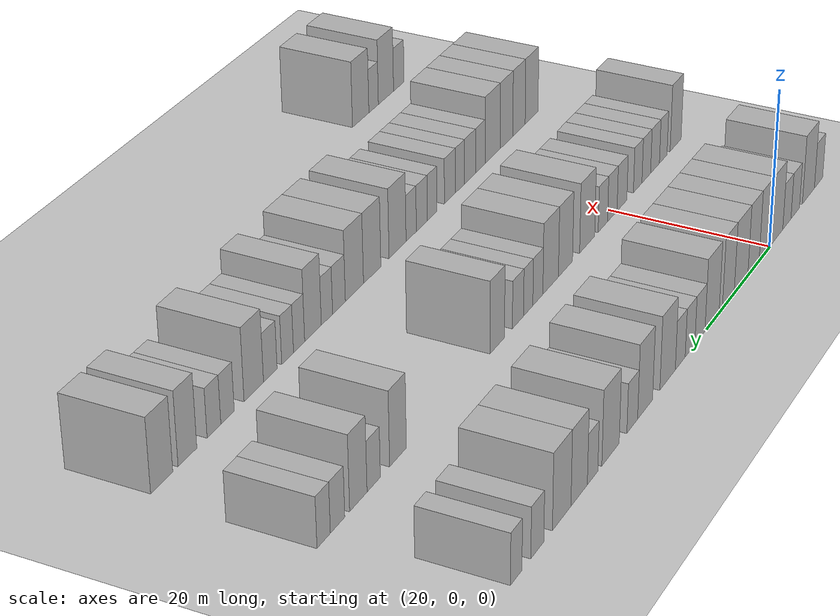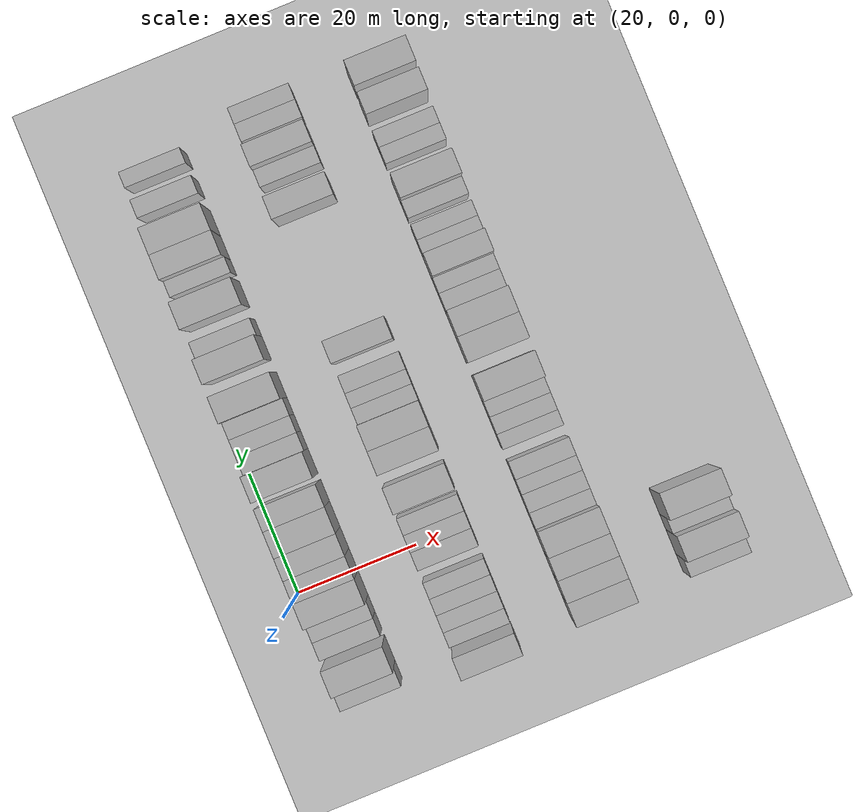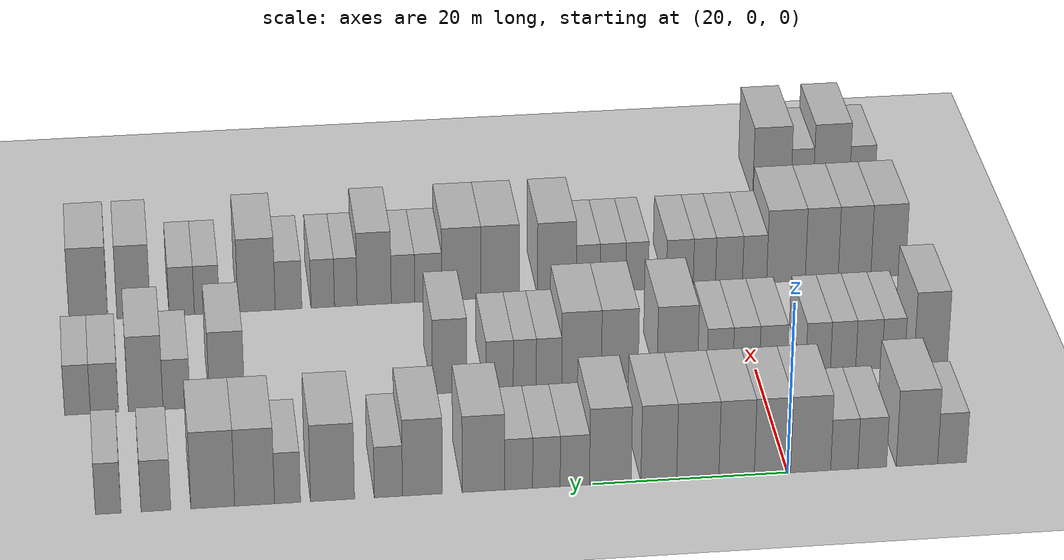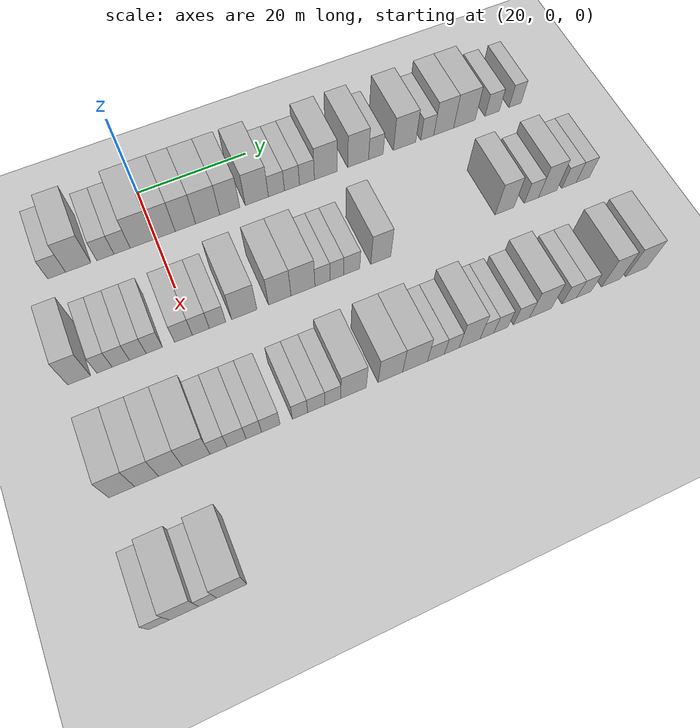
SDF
<sdf version="1.6">
 <world name="default">
  <include><name>ground_plane_1</name><uri>model://HANNAS_ground_plane</uri></include>
  <model name="building_87">
   <static>1</static>
   <pose>25.0000 -16.9149 0 0.000000 0.000000 0.000000</pose>
   <link name="link">
    <pose>0 0 3.00 0 0 0</pose>
    <collision name="collision"><geometry><box><size>10.0000 2.9946 6.0000</size></box></geometry></collision>
    <visual name="visual">
     <cast_shadows>0</cast_shadows>
     <geometry><box><size>10.0000 2.9946 6.0000</size></box></geometry>
     <material>
      <script>
       <uri>model://HANNAS_wall/materials/scripts</uri>
       <uri>model://HANNAS_wall/materials/textures</uri>
       <name>vrc/HANNAS_wall</name>
      </script>
     </material>
    </visual>
   </link>
  </model>
  <model name="building_88">
   <static>1</static>
   <pose>25.0000 -13.2777 0 0.000000 0.000000 0.000000</pose>
   <link name="link">
    <pose>0 0 4.50 0 0 0</pose>
    <collision name="collision"><geometry><box><size>10.0000 4.2799 9.0000</size></box></geometry></collision>
    <visual name="visual">
     <cast_shadows>0</cast_shadows>
     <geometry><box><size>10.0000 4.2799 9.0000</size></box></geometry>
     <material>
      <script>
       <uri>model://HANNAS_wall/materials/scripts</uri>
       <uri>model://HANNAS_wall/materials/textures</uri>
       <name>vrc/HANNAS_wall</name>
      </script>
     </material>
    </visual>
   </link>
  </model>
  <model name="building_89">
   <static>1</static>
   <pose>25.0000 -8.6603 0 0.000000 0.000000 0.000000</pose>
   <link name="link">
    <pose>0 0 3.00 0 0 0</pose>
    <collision name="collision"><geometry><box><size>10.0000 2.9550 6.0000</size></box></geometry></collision>
    <visual name="visual">
     <cast_shadows>0</cast_shadows>
     <geometry><box><size>10.0000 2.9550 6.0000</size></box></geometry>
     <material>
      <script>
       <uri>model://HANNAS_wall/materials/scripts</uri>
       <uri>model://HANNAS_wall/materials/textures</uri>
       <name>vrc/HANNAS_wall</name>
      </script>
     </material>
    </visual>
   </link>
  </model>
  <model name="building_90">
   <static>1</static>
   <pose>25.0000 -5.7794 0 0.000000 0.000000 0.000000</pose>
   <link name="link">
    <pose>0 0 3.00 0 0 0</pose>
    <collision name="collision"><geometry><box><size>10.0000 2.8067 6.0000</size></box></geometry></collision>
    <visual name="visual">
     <cast_shadows>0</cast_shadows>
     <geometry><box><size>10.0000 2.8067 6.0000</size></box></geometry>
     <material>
      <script>
       <uri>model://HANNAS_wall/materials/scripts</uri>
       <uri>model://HANNAS_wall/materials/textures</uri>
       <name>vrc/HANNAS_wall</name>
      </script>
     </material>
    </visual>
   </link>
  </model>
  <model name="building_91">
   <static>1</static>
   <pose>25.0000 -2.3033 0 0.000000 0.000000 0.000000</pose>
   <link name="link">
    <pose>0 0 4.50 0 0 0</pose>
    <collision name="collision"><geometry><box><size>10.0000 4.1456 9.0000</size></box></geometry></collision>
    <visual name="visual">
     <cast_shadows>0</cast_shadows>
     <geometry><box><size>10.0000 4.1456 9.0000</size></box></geometry>
     <material>
      <script>
       <uri>model://HANNAS_wall/materials/scripts</uri>
       <uri>model://HANNAS_wall/materials/textures</uri>
       <name>vrc/HANNAS_wall</name>
      </script>
     </material>
    </visual>
   </link>
  </model>
  <model name="building_92">
   <static>1</static>
   <pose>25.0000 1.6266 0 0.000000 0.000000 0.000000</pose>
   <link name="link">
    <pose>0 0 4.50 0 0 0</pose>
    <collision name="collision"><geometry><box><size>10.0000 3.7142 9.0000</size></box></geometry></collision>
    <visual name="visual">
     <cast_shadows>0</cast_shadows>
     <geometry><box><size>10.0000 3.7142 9.0000</size></box></geometry>
     <material>
      <script>
       <uri>model://HANNAS_wall/materials/scripts</uri>
       <uri>model://HANNAS_wall/materials/textures</uri>
       <name>vrc/HANNAS_wall</name>
      </script>
     </material>
    </visual>
   </link>
  </model>
  <model name="building_93">
   <static>1</static>
   <pose>25.0000 5.3016 0 0.000000 0.000000 0.000000</pose>
   <link name="link">
    <pose>0 0 4.50 0 0 0</pose>
    <collision name="collision"><geometry><box><size>10.0000 3.6359 9.0000</size></box></geometry></collision>
    <visual name="visual">
     <cast_shadows>0</cast_shadows>
     <geometry><box><size>10.0000 3.6359 9.0000</size></box></geometry>
     <material>
      <script>
       <uri>model://HANNAS_wall/materials/scripts</uri>
       <uri>model://HANNAS_wall/materials/textures</uri>
       <name>vrc/HANNAS_wall</name>
      </script>
     </material>
    </visual>
   </link>
  </model>
  <model name="building_94">
   <static>1</static>
   <pose>25.0000 9.2811 0 0.000000 0.000000 0.000000</pose>
   <link name="link">
    <pose>0 0 4.50 0 0 0</pose>
    <collision name="collision"><geometry><box><size>10.0000 4.3231 9.0000</size></box></geometry></collision>
    <visual name="visual">
     <cast_shadows>0</cast_shadows>
     <geometry><box><size>10.0000 4.3231 9.0000</size></box></geometry>
     <material>
      <script>
       <uri>model://HANNAS_wall/materials/scripts</uri>
       <uri>model://HANNAS_wall/materials/textures</uri>
       <name>vrc/HANNAS_wall</name>
      </script>
     </material>
    </visual>
   </link>
  </model>
  <model name="building_95">
   <static>1</static>
   <pose>25.0000 13.2695 0 0.000000 0.000000 0.000000</pose>
   <link name="link">
    <pose>0 0 4.50 0 0 0</pose>
    <collision name="collision"><geometry><box><size>10.0000 3.6537 9.0000</size></box></geometry></collision>
    <visual name="visual">
     <cast_shadows>0</cast_shadows>
     <geometry><box><size>10.0000 3.6537 9.0000</size></box></geometry>
     <material>
      <script>
       <uri>model://HANNAS_wall/materials/scripts</uri>
       <uri>model://HANNAS_wall/materials/textures</uri>
       <name>vrc/HANNAS_wall</name>
      </script>
     </material>
    </visual>
   </link>
  </model>
  <model name="building_96">
   <static>1</static>
   <pose>25.0000 18.2211 0 0.000000 0.000000 0.000000</pose>
   <link name="link">
    <pose>0 0 4.50 0 0 0</pose>
    <collision name="collision"><geometry><box><size>10.0000 4.2493 9.0000</size></box></geometry></collision>
    <visual name="visual">
     <cast_shadows>0</cast_shadows>
     <geometry><box><size>10.0000 4.2493 9.0000</size></box></geometry>
     <material>
      <script>
       <uri>model://HANNAS_wall/materials/scripts</uri>
       <uri>model://HANNAS_wall/materials/textures</uri>
       <name>vrc/HANNAS_wall</name>
      </script>
     </material>
    </visual>
   </link>
  </model>
  <model name="building_97">
   <static>1</static>
   <pose>25.0000 21.8358 0 0.000000 0.000000 0.000000</pose>
   <link name="link">
    <pose>0 0 3.00 0 0 0</pose>
    <collision name="collision"><geometry><box><size>10.0000 2.9803 6.0000</size></box></geometry></collision>
    <visual name="visual">
     <cast_shadows>0</cast_shadows>
     <geometry><box><size>10.0000 2.9803 6.0000</size></box></geometry>
     <material>
      <script>
       <uri>model://HANNAS_wall/materials/scripts</uri>
       <uri>model://HANNAS_wall/materials/textures</uri>
       <name>vrc/HANNAS_wall</name>
      </script>
     </material>
    </visual>
   </link>
  </model>
  <model name="building_98">
   <static>1</static>
   <pose>25.0000 24.7289 0 0.000000 0.000000 0.000000</pose>
   <link name="link">
    <pose>0 0 3.00 0 0 0</pose>
    <collision name="collision"><geometry><box><size>10.0000 2.8059 6.0000</size></box></geometry></collision>
    <visual name="visual">
     <cast_shadows>0</cast_shadows>
     <geometry><box><size>10.0000 2.8059 6.0000</size></box></geometry>
     <material>
      <script>
       <uri>model://HANNAS_wall/materials/scripts</uri>
       <uri>model://HANNAS_wall/materials/textures</uri>
       <name>vrc/HANNAS_wall</name>
      </script>
     </material>
    </visual>
   </link>
  </model>
  <model name="building_99">
   <static>1</static>
   <pose>25.0000 27.5397 0 0.000000 0.000000 0.000000</pose>
   <link name="link">
    <pose>0 0 3.00 0 0 0</pose>
    <collision name="collision"><geometry><box><size>10.0000 2.8157 6.0000</size></box></geometry></collision>
    <visual name="visual">
     <cast_shadows>0</cast_shadows>
     <geometry><box><size>10.0000 2.8157 6.0000</size></box></geometry>
     <material>
      <script>
       <uri>model://HANNAS_wall/materials/scripts</uri>
       <uri>model://HANNAS_wall/materials/textures</uri>
       <name>vrc/HANNAS_wall</name>
      </script>
     </material>
    </visual>
   </link>
  </model>
  <model name="building_100">
   <static>1</static>
   <pose>25.0000 31.1064 0 0.000000 0.000000 0.000000</pose>
   <link name="link">
    <pose>0 0 4.50 0 0 0</pose>
    <collision name="collision"><geometry><box><size>10.0000 4.3178 9.0000</size></box></geometry></collision>
    <visual name="visual">
     <cast_shadows>0</cast_shadows>
     <geometry><box><size>10.0000 4.3178 9.0000</size></box></geometry>
     <material>
      <script>
       <uri>model://HANNAS_wall/materials/scripts</uri>
       <uri>model://HANNAS_wall/materials/textures</uri>
       <name>vrc/HANNAS_wall</name>
      </script>
     </material>
    </visual>
   </link>
  </model>
  <model name="building_101">
   <static>1</static>
   <pose>25.0000 37.2836 0 0.000000 0.000000 0.000000</pose>
   <link name="link">
    <pose>0 0 4.50 0 0 0</pose>
    <collision name="collision"><geometry><box><size>10.0000 4.0366 9.0000</size></box></geometry></collision>
    <visual name="visual">
     <cast_shadows>0</cast_shadows>
     <geometry><box><size>10.0000 4.0366 9.0000</size></box></geometry>
     <material>
      <script>
       <uri>model://HANNAS_wall/materials/scripts</uri>
       <uri>model://HANNAS_wall/materials/textures</uri>
       <name>vrc/HANNAS_wall</name>
      </script>
     </material>
    </visual>
   </link>
  </model>
  <model name="building_102">
   <static>1</static>
   <pose>25.0000 40.7236 0 0.000000 0.000000 0.000000</pose>
   <link name="link">
    <pose>0 0 3.00 0 0 0</pose>
    <collision name="collision"><geometry><box><size>10.0000 2.8433 6.0000</size></box></geometry></collision>
    <visual name="visual">
     <cast_shadows>0</cast_shadows>
     <geometry><box><size>10.0000 2.8433 6.0000</size></box></geometry>
     <material>
      <script>
       <uri>model://HANNAS_wall/materials/scripts</uri>
       <uri>model://HANNAS_wall/materials/textures</uri>
       <name>vrc/HANNAS_wall</name>
      </script>
     </material>
    </visual>
   </link>
  </model>
  <model name="building_103">
   <static>1</static>
   <pose>25.0000 46.3626 0 0.000000 0.000000 0.000000</pose>
   <link name="link">
    <pose>0 0 4.50 0 0 0</pose>
    <collision name="collision"><geometry><box><size>10.0000 4.4347 9.0000</size></box></geometry></collision>
    <visual name="visual">
     <cast_shadows>0</cast_shadows>
     <geometry><box><size>10.0000 4.4347 9.0000</size></box></geometry>
     <material>
      <script>
       <uri>model://HANNAS_wall/materials/scripts</uri>
       <uri>model://HANNAS_wall/materials/textures</uri>
       <name>vrc/HANNAS_wall</name>
      </script>
     </material>
    </visual>
   </link>
  </model>
  <model name="building_104">
   <static>1</static>
   <pose>25.0000 50.8864 0 0.000000 0.000000 0.000000</pose>
   <link name="link">
    <pose>0 0 3.00 0 0 0</pose>
    <collision name="collision"><geometry><box><size>10.0000 2.6129 6.0000</size></box></geometry></collision>
    <visual name="visual">
     <cast_shadows>0</cast_shadows>
     <geometry><box><size>10.0000 2.6129 6.0000</size></box></geometry>
     <material>
      <script>
       <uri>model://HANNAS_wall/materials/scripts</uri>
       <uri>model://HANNAS_wall/materials/textures</uri>
       <name>vrc/HANNAS_wall</name>
      </script>
     </material>
    </visual>
   </link>
  </model>
  <model name="building_105">
   <static>1</static>
   <pose>25.0000 54.1903 0 0.000000 0.000000 0.000000</pose>
   <link name="link">
    <pose>0 0 4.50 0 0 0</pose>
    <collision name="collision"><geometry><box><size>10.0000 3.9950 9.0000</size></box></geometry></collision>
    <visual name="visual">
     <cast_shadows>0</cast_shadows>
     <geometry><box><size>10.0000 3.9950 9.0000</size></box></geometry>
     <material>
      <script>
       <uri>model://HANNAS_wall/materials/scripts</uri>
       <uri>model://HANNAS_wall/materials/textures</uri>
       <name>vrc/HANNAS_wall</name>
      </script>
     </material>
    </visual>
   </link>
  </model>
  <model name="building_106">
   <static>1</static>
   <pose>25.0000 58.3850 0 0.000000 0.000000 0.000000</pose>
   <link name="link">
    <pose>0 0 4.50 0 0 0</pose>
    <collision name="collision"><geometry><box><size>10.0000 4.3944 9.0000</size></box></geometry></collision>
    <visual name="visual">
     <cast_shadows>0</cast_shadows>
     <geometry><box><size>10.0000 4.3944 9.0000</size></box></geometry>
     <material>
      <script>
       <uri>model://HANNAS_wall/materials/scripts</uri>
       <uri>model://HANNAS_wall/materials/textures</uri>
       <name>vrc/HANNAS_wall</name>
      </script>
     </material>
    </visual>
   </link>
  </model>
  <model name="building_107">
   <static>1</static>
   <pose>25.0000 64.0694 0 0.000000 0.000000 0.000000</pose>
   <link name="link">
    <pose>0 0 3.00 0 0 0</pose>
    <collision name="collision"><geometry><box><size>10.0000 2.9744 6.0000</size></box></geometry></collision>
    <visual name="visual">
     <cast_shadows>0</cast_shadows>
     <geometry><box><size>10.0000 2.9744 6.0000</size></box></geometry>
     <material>
      <script>
       <uri>model://HANNAS_wall/materials/scripts</uri>
       <uri>model://HANNAS_wall/materials/textures</uri>
       <name>vrc/HANNAS_wall</name>
      </script>
     </material>
    </visual>
   </link>
  </model>
  <model name="building_108">
   <static>1</static>
   <pose>25.0000 68.8311 0 0.000000 0.000000 0.000000</pose>
   <link name="link">
    <pose>0 0 3.00 0 0 0</pose>
    <collision name="collision"><geometry><box><size>10.0000 2.5490 6.0000</size></box></geometry></collision>
    <visual name="visual">
     <cast_shadows>0</cast_shadows>
     <geometry><box><size>10.0000 2.5490 6.0000</size></box></geometry>
     <material>
      <script>
       <uri>model://HANNAS_wall/materials/scripts</uri>
       <uri>model://HANNAS_wall/materials/textures</uri>
       <name>vrc/HANNAS_wall</name>
      </script>
     </material>
    </visual>
   </link>
  </model>
  <model name="building_252">
   <static>1</static>
   <pose>44.0000 -18.5643 0 0.000000 0.000000 0.000000</pose>
   <link name="link">
    <pose>0 0 4.50 0 0 0</pose>
    <collision name="collision"><geometry><box><size>10.0000 3.6145 9.0000</size></box></geometry></collision>
    <visual name="visual">
     <cast_shadows>0</cast_shadows>
     <geometry><box><size>10.0000 3.6145 9.0000</size></box></geometry>
     <material>
      <script>
       <uri>model://HANNAS_wall/materials/scripts</uri>
       <uri>model://HANNAS_wall/materials/textures</uri>
       <name>vrc/HANNAS_wall</name>
      </script>
     </material>
    </visual>
   </link>
  </model>
  <model name="building_253">
   <static>1</static>
   <pose>44.0000 -14.5349 0 0.000000 0.000000 0.000000</pose>
   <link name="link">
    <pose>0 0 3.00 0 0 0</pose>
    <collision name="collision"><geometry><box><size>10.0000 2.4443 6.0000</size></box></geometry></collision>
    <visual name="visual">
     <cast_shadows>0</cast_shadows>
     <geometry><box><size>10.0000 2.4443 6.0000</size></box></geometry>
     <material>
      <script>
       <uri>model://HANNAS_wall/materials/scripts</uri>
       <uri>model://HANNAS_wall/materials/textures</uri>
       <name>vrc/HANNAS_wall</name>
      </script>
     </material>
    </visual>
   </link>
  </model>
  <model name="building_254">
   <static>1</static>
   <pose>44.0000 -11.9083 0 0.000000 0.000000 0.000000</pose>
   <link name="link">
    <pose>0 0 3.00 0 0 0</pose>
    <collision name="collision"><geometry><box><size>10.0000 2.8089 6.0000</size></box></geometry></collision>
    <visual name="visual">
     <cast_shadows>0</cast_shadows>
     <geometry><box><size>10.0000 2.8089 6.0000</size></box></geometry>
     <material>
      <script>
       <uri>model://HANNAS_wall/materials/scripts</uri>
       <uri>model://HANNAS_wall/materials/textures</uri>
       <name>vrc/HANNAS_wall</name>
      </script>
     </material>
    </visual>
   </link>
  </model>
  <model name="building_255">
   <static>1</static>
   <pose>44.0000 -9.1466 0 0.000000 0.000000 0.000000</pose>
   <link name="link">
    <pose>0 0 3.00 0 0 0</pose>
    <collision name="collision"><geometry><box><size>10.0000 2.7145 6.0000</size></box></geometry></collision>
    <visual name="visual">
     <cast_shadows>0</cast_shadows>
     <geometry><box><size>10.0000 2.7145 6.0000</size></box></geometry>
     <material>
      <script>
       <uri>model://HANNAS_wall/materials/scripts</uri>
       <uri>model://HANNAS_wall/materials/textures</uri>
       <name>vrc/HANNAS_wall</name>
      </script>
     </material>
    </visual>
   </link>
  </model>
  <model name="building_256">
   <static>1</static>
   <pose>44.0000 -6.4639 0 0.000000 0.000000 0.000000</pose>
   <link name="link">
    <pose>0 0 3.00 0 0 0</pose>
    <collision name="collision"><geometry><box><size>10.0000 2.6509 6.0000</size></box></geometry></collision>
    <visual name="visual">
     <cast_shadows>0</cast_shadows>
     <geometry><box><size>10.0000 2.6509 6.0000</size></box></geometry>
     <material>
      <script>
       <uri>model://HANNAS_wall/materials/scripts</uri>
       <uri>model://HANNAS_wall/materials/textures</uri>
       <name>vrc/HANNAS_wall</name>
      </script>
     </material>
    </visual>
   </link>
  </model>
  <model name="building_257">
   <static>1</static>
   <pose>44.0000 -1.6582 0 0.000000 0.000000 0.000000</pose>
   <link name="link">
    <pose>0 0 3.00 0 0 0</pose>
    <collision name="collision"><geometry><box><size>10.0000 2.9605 6.0000</size></box></geometry></collision>
    <visual name="visual">
     <cast_shadows>0</cast_shadows>
     <geometry><box><size>10.0000 2.9605 6.0000</size></box></geometry>
     <material>
      <script>
       <uri>model://HANNAS_wall/materials/scripts</uri>
       <uri>model://HANNAS_wall/materials/textures</uri>
       <name>vrc/HANNAS_wall</name>
      </script>
     </material>
    </visual>
   </link>
  </model>
  <model name="building_258">
   <static>1</static>
   <pose>44.0000 1.2371 0 0.000000 0.000000 0.000000</pose>
   <link name="link">
    <pose>0 0 3.00 0 0 0</pose>
    <collision name="collision"><geometry><box><size>10.0000 2.8301 6.0000</size></box></geometry></collision>
    <visual name="visual">
     <cast_shadows>0</cast_shadows>
     <geometry><box><size>10.0000 2.8301 6.0000</size></box></geometry>
     <material>
      <script>
       <uri>model://HANNAS_wall/materials/scripts</uri>
       <uri>model://HANNAS_wall/materials/textures</uri>
       <name>vrc/HANNAS_wall</name>
      </script>
     </material>
    </visual>
   </link>
  </model>
  <model name="building_259">
   <static>1</static>
   <pose>44.0000 4.0367 0 0.000000 0.000000 0.000000</pose>
   <link name="link">
    <pose>0 0 3.00 0 0 0</pose>
    <collision name="collision"><geometry><box><size>10.0000 2.7692 6.0000</size></box></geometry></collision>
    <visual name="visual">
     <cast_shadows>0</cast_shadows>
     <geometry><box><size>10.0000 2.7692 6.0000</size></box></geometry>
     <material>
      <script>
       <uri>model://HANNAS_wall/materials/scripts</uri>
       <uri>model://HANNAS_wall/materials/textures</uri>
       <name>vrc/HANNAS_wall</name>
      </script>
     </material>
    </visual>
   </link>
  </model>
  <model name="building_260">
   <static>1</static>
   <pose>44.0000 8.5799 0 0.000000 0.000000 0.000000</pose>
   <link name="link">
    <pose>0 0 4.50 0 0 0</pose>
    <collision name="collision"><geometry><box><size>10.0000 4.3172 9.0000</size></box></geometry></collision>
    <visual name="visual">
     <cast_shadows>0</cast_shadows>
     <geometry><box><size>10.0000 4.3172 9.0000</size></box></geometry>
     <material>
      <script>
       <uri>model://HANNAS_wall/materials/scripts</uri>
       <uri>model://HANNAS_wall/materials/textures</uri>
       <name>vrc/HANNAS_wall</name>
      </script>
     </material>
    </visual>
   </link>
  </model>
  <model name="building_261">
   <static>1</static>
   <pose>44.0000 14.6916 0 0.000000 0.000000 0.000000</pose>
   <link name="link">
    <pose>0 0 4.50 0 0 0</pose>
    <collision name="collision"><geometry><box><size>10.0000 3.9061 9.0000</size></box></geometry></collision>
    <visual name="visual">
     <cast_shadows>0</cast_shadows>
     <geometry><box><size>10.0000 3.9061 9.0000</size></box></geometry>
     <material>
      <script>
       <uri>model://HANNAS_wall/materials/scripts</uri>
       <uri>model://HANNAS_wall/materials/textures</uri>
       <name>vrc/HANNAS_wall</name>
      </script>
     </material>
    </visual>
   </link>
  </model>
  <model name="building_262">
   <static>1</static>
   <pose>44.0000 18.7478 0 0.000000 0.000000 0.000000</pose>
   <link name="link">
    <pose>0 0 4.50 0 0 0</pose>
    <collision name="collision"><geometry><box><size>10.0000 4.2063 9.0000</size></box></geometry></collision>
    <visual name="visual">
     <cast_shadows>0</cast_shadows>
     <geometry><box><size>10.0000 4.2063 9.0000</size></box></geometry>
     <material>
      <script>
       <uri>model://HANNAS_wall/materials/scripts</uri>
       <uri>model://HANNAS_wall/materials/textures</uri>
       <name>vrc/HANNAS_wall</name>
      </script>
     </material>
    </visual>
   </link>
  </model>
  <model name="building_263">
   <static>1</static>
   <pose>44.0000 22.1888 0 0.000000 0.000000 0.000000</pose>
   <link name="link">
    <pose>0 0 3.00 0 0 0</pose>
    <collision name="collision"><geometry><box><size>10.0000 2.6757 6.0000</size></box></geometry></collision>
    <visual name="visual">
     <cast_shadows>0</cast_shadows>
     <geometry><box><size>10.0000 2.6757 6.0000</size></box></geometry>
     <material>
      <script>
       <uri>model://HANNAS_wall/materials/scripts</uri>
       <uri>model://HANNAS_wall/materials/textures</uri>
       <name>vrc/HANNAS_wall</name>
      </script>
     </material>
    </visual>
   </link>
  </model>
  <model name="building_264">
   <static>1</static>
   <pose>44.0000 24.7408 0 0.000000 0.000000 0.000000</pose>
   <link name="link">
    <pose>0 0 3.00 0 0 0</pose>
    <collision name="collision"><geometry><box><size>10.0000 2.4284 6.0000</size></box></geometry></collision>
    <visual name="visual">
     <cast_shadows>0</cast_shadows>
     <geometry><box><size>10.0000 2.4284 6.0000</size></box></geometry>
     <material>
      <script>
       <uri>model://HANNAS_wall/materials/scripts</uri>
       <uri>model://HANNAS_wall/materials/textures</uri>
       <name>vrc/HANNAS_wall</name>
      </script>
     </material>
    </visual>
   </link>
  </model>
  <model name="building_265">
   <static>1</static>
   <pose>44.0000 27.4040 0 0.000000 0.000000 0.000000</pose>
   <link name="link">
    <pose>0 0 3.00 0 0 0</pose>
    <collision name="collision"><geometry><box><size>10.0000 2.8980 6.0000</size></box></geometry></collision>
    <visual name="visual">
     <cast_shadows>0</cast_shadows>
     <geometry><box><size>10.0000 2.8980 6.0000</size></box></geometry>
     <material>
      <script>
       <uri>model://HANNAS_wall/materials/scripts</uri>
       <uri>model://HANNAS_wall/materials/textures</uri>
       <name>vrc/HANNAS_wall</name>
      </script>
     </material>
    </visual>
   </link>
  </model>
  <model name="building_266">
   <static>1</static>
   <pose>44.0000 32.6652 0 0.000000 0.000000 0.000000</pose>
   <link name="link">
    <pose>0 0 4.50 0 0 0</pose>
    <collision name="collision"><geometry><box><size>10.0000 3.6244 9.0000</size></box></geometry></collision>
    <visual name="visual">
     <cast_shadows>0</cast_shadows>
     <geometry><box><size>10.0000 3.6244 9.0000</size></box></geometry>
     <material>
      <script>
       <uri>model://HANNAS_wall/materials/scripts</uri>
       <uri>model://HANNAS_wall/materials/textures</uri>
       <name>vrc/HANNAS_wall</name>
      </script>
     </material>
    </visual>
   </link>
  </model>
  <model name="building_267">
   <static>1</static>
   <pose>44.0000 55.9823 0 0.000000 0.000000 0.000000</pose>
   <link name="link">
    <pose>0 0 4.50 0 0 0</pose>
    <collision name="collision"><geometry><box><size>10.0000 3.6699 9.0000</size></box></geometry></collision>
    <visual name="visual">
     <cast_shadows>0</cast_shadows>
     <geometry><box><size>10.0000 3.6699 9.0000</size></box></geometry>
     <material>
      <script>
       <uri>model://HANNAS_wall/materials/scripts</uri>
       <uri>model://HANNAS_wall/materials/textures</uri>
       <name>vrc/HANNAS_wall</name>
      </script>
     </material>
    </visual>
   </link>
  </model>
  <model name="building_268">
   <static>1</static>
   <pose>44.0000 61.2296 0 0.000000 0.000000 0.000000</pose>
   <link name="link">
    <pose>0 0 3.00 0 0 0</pose>
    <collision name="collision"><geometry><box><size>10.0000 2.8248 6.0000</size></box></geometry></collision>
    <visual name="visual">
     <cast_shadows>0</cast_shadows>
     <geometry><box><size>10.0000 2.8248 6.0000</size></box></geometry>
     <material>
      <script>
       <uri>model://HANNAS_wall/materials/scripts</uri>
       <uri>model://HANNAS_wall/materials/textures</uri>
       <name>vrc/HANNAS_wall</name>
      </script>
     </material>
    </visual>
   </link>
  </model>
  <model name="building_269">
   <static>1</static>
   <pose>44.0000 64.4544 0 0.000000 0.000000 0.000000</pose>
   <link name="link">
    <pose>0 0 4.50 0 0 0</pose>
    <collision name="collision"><geometry><box><size>10.0000 3.6248 9.0000</size></box></geometry></collision>
    <visual name="visual">
     <cast_shadows>0</cast_shadows>
     <geometry><box><size>10.0000 3.6248 9.0000</size></box></geometry>
     <material>
      <script>
       <uri>model://HANNAS_wall/materials/scripts</uri>
       <uri>model://HANNAS_wall/materials/textures</uri>
       <name>vrc/HANNAS_wall</name>
      </script>
     </material>
    </visual>
   </link>
  </model>
  <model name="building_270">
   <static>1</static>
   <pose>44.0000 68.7262 0 0.000000 0.000000 0.000000</pose>
   <link name="link">
    <pose>0 0 3.00 0 0 0</pose>
    <collision name="collision"><geometry><box><size>10.0000 2.9189 6.0000</size></box></geometry></collision>
    <visual name="visual">
     <cast_shadows>0</cast_shadows>
     <geometry><box><size>10.0000 2.9189 6.0000</size></box></geometry>
     <material>
      <script>
       <uri>model://HANNAS_wall/materials/scripts</uri>
       <uri>model://HANNAS_wall/materials/textures</uri>
       <name>vrc/HANNAS_wall</name>
      </script>
     </material>
    </visual>
   </link>
  </model>
  <model name="building_271">
   <static>1</static>
   <pose>44.0000 71.5201 0 0.000000 0.000000 0.000000</pose>
   <link name="link">
    <pose>0 0 3.00 0 0 0</pose>
    <collision name="collision"><geometry><box><size>10.0000 2.6688 6.0000</size></box></geometry></collision>
    <visual name="visual">
     <cast_shadows>0</cast_shadows>
     <geometry><box><size>10.0000 2.6688 6.0000</size></box></geometry>
     <material>
      <script>
       <uri>model://HANNAS_wall/materials/scripts</uri>
       <uri>model://HANNAS_wall/materials/textures</uri>
       <name>vrc/HANNAS_wall</name>
      </script>
     </material>
    </visual>
   </link>
  </model>
  <model name="building_431">
   <static>1</static>
   <pose>63.0000 -17.6639 0 0.000000 0.000000 0.000000</pose>
   <link name="link">
    <pose>0 0 4.50 0 0 0</pose>
    <collision name="collision"><geometry><box><size>10.0000 3.8577 9.0000</size></box></geometry></collision>
    <visual name="visual">
     <cast_shadows>0</cast_shadows>
     <geometry><box><size>10.0000 3.8577 9.0000</size></box></geometry>
     <material>
      <script>
       <uri>model://HANNAS_wall/materials/scripts</uri>
       <uri>model://HANNAS_wall/materials/textures</uri>
       <name>vrc/HANNAS_wall</name>
      </script>
     </material>
    </visual>
   </link>
  </model>
  <model name="building_432">
   <static>1</static>
   <pose>63.0000 -13.9150 0 0.000000 0.000000 0.000000</pose>
   <link name="link">
    <pose>0 0 4.50 0 0 0</pose>
    <collision name="collision"><geometry><box><size>10.0000 3.6401 9.0000</size></box></geometry></collision>
    <visual name="visual">
     <cast_shadows>0</cast_shadows>
     <geometry><box><size>10.0000 3.6401 9.0000</size></box></geometry>
     <material>
      <script>
       <uri>model://HANNAS_wall/materials/scripts</uri>
       <uri>model://HANNAS_wall/materials/textures</uri>
       <name>vrc/HANNAS_wall</name>
      </script>
     </material>
    </visual>
   </link>
  </model>
  <model name="building_433">
   <static>1</static>
   <pose>63.0000 -10.2598 0 0.000000 0.000000 0.000000</pose>
   <link name="link">
    <pose>0 0 4.50 0 0 0</pose>
    <collision name="collision"><geometry><box><size>10.0000 3.6702 9.0000</size></box></geometry></collision>
    <visual name="visual">
     <cast_shadows>0</cast_shadows>
     <geometry><box><size>10.0000 3.6702 9.0000</size></box></geometry>
     <material>
      <script>
       <uri>model://HANNAS_wall/materials/scripts</uri>
       <uri>model://HANNAS_wall/materials/textures</uri>
       <name>vrc/HANNAS_wall</name>
      </script>
     </material>
    </visual>
   </link>
  </model>
  <model name="building_434">
   <static>1</static>
   <pose>63.0000 -6.2819 0 0.000000 0.000000 0.000000</pose>
   <link name="link">
    <pose>0 0 4.50 0 0 0</pose>
    <collision name="collision"><geometry><box><size>10.0000 4.2858 9.0000</size></box></geometry></collision>
    <visual name="visual">
     <cast_shadows>0</cast_shadows>
     <geometry><box><size>10.0000 4.2858 9.0000</size></box></geometry>
     <material>
      <script>
       <uri>model://HANNAS_wall/materials/scripts</uri>
       <uri>model://HANNAS_wall/materials/textures</uri>
       <name>vrc/HANNAS_wall</name>
      </script>
     </material>
    </visual>
   </link>
  </model>
  <model name="building_435">
   <static>1</static>
   <pose>63.0000 -2.7974 0 0.000000 0.000000 0.000000</pose>
   <link name="link">
    <pose>0 0 3.00 0 0 0</pose>
    <collision name="collision"><geometry><box><size>10.0000 2.6831 6.0000</size></box></geometry></collision>
    <visual name="visual">
     <cast_shadows>0</cast_shadows>
     <geometry><box><size>10.0000 2.6831 6.0000</size></box></geometry>
     <material>
      <script>
       <uri>model://HANNAS_wall/materials/scripts</uri>
       <uri>model://HANNAS_wall/materials/textures</uri>
       <name>vrc/HANNAS_wall</name>
      </script>
     </material>
    </visual>
   </link>
  </model>
  <model name="building_436">
   <static>1</static>
   <pose>63.0000 0.0382 0 0.000000 0.000000 0.000000</pose>
   <link name="link">
    <pose>0 0 3.00 0 0 0</pose>
    <collision name="collision"><geometry><box><size>10.0000 2.9880 6.0000</size></box></geometry></collision>
    <visual name="visual">
     <cast_shadows>0</cast_shadows>
     <geometry><box><size>10.0000 2.9880 6.0000</size></box></geometry>
     <material>
      <script>
       <uri>model://HANNAS_wall/materials/scripts</uri>
       <uri>model://HANNAS_wall/materials/textures</uri>
       <name>vrc/HANNAS_wall</name>
      </script>
     </material>
    </visual>
   </link>
  </model>
  <model name="building_437">
   <static>1</static>
   <pose>63.0000 2.7661 0 0.000000 0.000000 0.000000</pose>
   <link name="link">
    <pose>0 0 3.00 0 0 0</pose>
    <collision name="collision"><geometry><box><size>10.0000 2.4678 6.0000</size></box></geometry></collision>
    <visual name="visual">
     <cast_shadows>0</cast_shadows>
     <geometry><box><size>10.0000 2.4678 6.0000</size></box></geometry>
     <material>
      <script>
       <uri>model://HANNAS_wall/materials/scripts</uri>
       <uri>model://HANNAS_wall/materials/textures</uri>
       <name>vrc/HANNAS_wall</name>
      </script>
     </material>
    </visual>
   </link>
  </model>
  <model name="building_438">
   <static>1</static>
   <pose>63.0000 5.4871 0 0.000000 0.000000 0.000000</pose>
   <link name="link">
    <pose>0 0 3.00 0 0 0</pose>
    <collision name="collision"><geometry><box><size>10.0000 2.9742 6.0000</size></box></geometry></collision>
    <visual name="visual">
     <cast_shadows>0</cast_shadows>
     <geometry><box><size>10.0000 2.9742 6.0000</size></box></geometry>
     <material>
      <script>
       <uri>model://HANNAS_wall/materials/scripts</uri>
       <uri>model://HANNAS_wall/materials/textures</uri>
       <name>vrc/HANNAS_wall</name>
      </script>
     </material>
    </visual>
   </link>
  </model>
  <model name="building_439">
   <static>1</static>
   <pose>63.0000 10.2155 0 0.000000 0.000000 0.000000</pose>
   <link name="link">
    <pose>0 0 3.00 0 0 0</pose>
    <collision name="collision"><geometry><box><size>10.0000 2.4826 6.0000</size></box></geometry></collision>
    <visual name="visual">
     <cast_shadows>0</cast_shadows>
     <geometry><box><size>10.0000 2.4826 6.0000</size></box></geometry>
     <material>
      <script>
       <uri>model://HANNAS_wall/materials/scripts</uri>
       <uri>model://HANNAS_wall/materials/textures</uri>
       <name>vrc/HANNAS_wall</name>
      </script>
     </material>
    </visual>
   </link>
  </model>
  <model name="building_440">
   <static>1</static>
   <pose>63.0000 12.8767 0 0.000000 0.000000 0.000000</pose>
   <link name="link">
    <pose>0 0 3.00 0 0 0</pose>
    <collision name="collision"><geometry><box><size>10.0000 2.8399 6.0000</size></box></geometry></collision>
    <visual name="visual">
     <cast_shadows>0</cast_shadows>
     <geometry><box><size>10.0000 2.8399 6.0000</size></box></geometry>
     <material>
      <script>
       <uri>model://HANNAS_wall/materials/scripts</uri>
       <uri>model://HANNAS_wall/materials/textures</uri>
       <name>vrc/HANNAS_wall</name>
      </script>
     </material>
    </visual>
   </link>
  </model>
  <model name="building_441">
   <static>1</static>
   <pose>63.0000 15.6071 0 0.000000 0.000000 0.000000</pose>
   <link name="link">
    <pose>0 0 3.00 0 0 0</pose>
    <collision name="collision"><geometry><box><size>10.0000 2.6209 6.0000</size></box></geometry></collision>
    <visual name="visual">
     <cast_shadows>0</cast_shadows>
     <geometry><box><size>10.0000 2.6209 6.0000</size></box></geometry>
     <material>
      <script>
       <uri>model://HANNAS_wall/materials/scripts</uri>
       <uri>model://HANNAS_wall/materials/textures</uri>
       <name>vrc/HANNAS_wall</name>
      </script>
     </material>
    </visual>
   </link>
  </model>
  <model name="building_442">
   <static>1</static>
   <pose>63.0000 19.0455 0 0.000000 0.000000 0.000000</pose>
   <link name="link">
    <pose>0 0 4.50 0 0 0</pose>
    <collision name="collision"><geometry><box><size>10.0000 4.2557 9.0000</size></box></geometry></collision>
    <visual name="visual">
     <cast_shadows>0</cast_shadows>
     <geometry><box><size>10.0000 4.2557 9.0000</size></box></geometry>
     <material>
      <script>
       <uri>model://HANNAS_wall/materials/scripts</uri>
       <uri>model://HANNAS_wall/materials/textures</uri>
       <name>vrc/HANNAS_wall</name>
      </script>
     </material>
    </visual>
   </link>
  </model>
  <model name="building_443">
   <static>1</static>
   <pose>63.0000 25.2705 0 0.000000 0.000000 0.000000</pose>
   <link name="link">
    <pose>0 0 4.50 0 0 0</pose>
    <collision name="collision"><geometry><box><size>10.0000 4.1943 9.0000</size></box></geometry></collision>
    <visual name="visual">
     <cast_shadows>0</cast_shadows>
     <geometry><box><size>10.0000 4.1943 9.0000</size></box></geometry>
     <material>
      <script>
       <uri>model://HANNAS_wall/materials/scripts</uri>
       <uri>model://HANNAS_wall/materials/textures</uri>
       <name>vrc/HANNAS_wall</name>
      </script>
     </material>
    </visual>
   </link>
  </model>
  <model name="building_444">
   <static>1</static>
   <pose>63.0000 29.5087 0 0.000000 0.000000 0.000000</pose>
   <link name="link">
    <pose>0 0 4.50 0 0 0</pose>
    <collision name="collision"><geometry><box><size>10.0000 4.2820 9.0000</size></box></geometry></collision>
    <visual name="visual">
     <cast_shadows>0</cast_shadows>
     <geometry><box><size>10.0000 4.2820 9.0000</size></box></geometry>
     <material>
      <script>
       <uri>model://HANNAS_wall/materials/scripts</uri>
       <uri>model://HANNAS_wall/materials/textures</uri>
       <name>vrc/HANNAS_wall</name>
      </script>
     </material>
    </visual>
   </link>
  </model>
  <model name="building_445">
   <static>1</static>
   <pose>63.0000 33.1261 0 0.000000 0.000000 0.000000</pose>
   <link name="link">
    <pose>0 0 3.00 0 0 0</pose>
    <collision name="collision"><geometry><box><size>10.0000 2.9529 6.0000</size></box></geometry></collision>
    <visual name="visual">
     <cast_shadows>0</cast_shadows>
     <geometry><box><size>10.0000 2.9529 6.0000</size></box></geometry>
     <material>
      <script>
       <uri>model://HANNAS_wall/materials/scripts</uri>
       <uri>model://HANNAS_wall/materials/textures</uri>
       <name>vrc/HANNAS_wall</name>
      </script>
     </material>
    </visual>
   </link>
  </model>
  <model name="building_446">
   <static>1</static>
   <pose>63.0000 35.8872 0 0.000000 0.000000 0.000000</pose>
   <link name="link">
    <pose>0 0 3.00 0 0 0</pose>
    <collision name="collision"><geometry><box><size>10.0000 2.5691 6.0000</size></box></geometry></collision>
    <visual name="visual">
     <cast_shadows>0</cast_shadows>
     <geometry><box><size>10.0000 2.5691 6.0000</size></box></geometry>
     <material>
      <script>
       <uri>model://HANNAS_wall/materials/scripts</uri>
       <uri>model://HANNAS_wall/materials/textures</uri>
       <name>vrc/HANNAS_wall</name>
      </script>
     </material>
    </visual>
   </link>
  </model>
  <model name="building_447">
   <static>1</static>
   <pose>63.0000 39.0361 0 0.000000 0.000000 0.000000</pose>
   <link name="link">
    <pose>0 0 4.50 0 0 0</pose>
    <collision name="collision"><geometry><box><size>10.0000 3.7286 9.0000</size></box></geometry></collision>
    <visual name="visual">
     <cast_shadows>0</cast_shadows>
     <geometry><box><size>10.0000 3.7286 9.0000</size></box></geometry>
     <material>
      <script>
       <uri>model://HANNAS_wall/materials/scripts</uri>
       <uri>model://HANNAS_wall/materials/textures</uri>
       <name>vrc/HANNAS_wall</name>
      </script>
     </material>
    </visual>
   </link>
  </model>
  <model name="building_448">
   <static>1</static>
   <pose>63.0000 42.1284 0 0.000000 0.000000 0.000000</pose>
   <link name="link">
    <pose>0 0 3.00 0 0 0</pose>
    <collision name="collision"><geometry><box><size>10.0000 2.4561 6.0000</size></box></geometry></collision>
    <visual name="visual">
     <cast_shadows>0</cast_shadows>
     <geometry><box><size>10.0000 2.4561 6.0000</size></box></geometry>
     <material>
      <script>
       <uri>model://HANNAS_wall/materials/scripts</uri>
       <uri>model://HANNAS_wall/materials/textures</uri>
       <name>vrc/HANNAS_wall</name>
      </script>
     </material>
    </visual>
   </link>
  </model>
  <model name="building_449">
   <static>1</static>
   <pose>63.0000 44.6333 0 0.000000 0.000000 0.000000</pose>
   <link name="link">
    <pose>0 0 3.00 0 0 0</pose>
    <collision name="collision"><geometry><box><size>10.0000 2.5535 6.0000</size></box></geometry></collision>
    <visual name="visual">
     <cast_shadows>0</cast_shadows>
     <geometry><box><size>10.0000 2.5535 6.0000</size></box></geometry>
     <material>
      <script>
       <uri>model://HANNAS_wall/materials/scripts</uri>
       <uri>model://HANNAS_wall/materials/textures</uri>
       <name>vrc/HANNAS_wall</name>
      </script>
     </material>
    </visual>
   </link>
  </model>
  <model name="building_450">
   <static>1</static>
   <pose>63.0000 48.3525 0 0.000000 0.000000 0.000000</pose>
   <link name="link">
    <pose>0 0 3.00 0 0 0</pose>
    <collision name="collision"><geometry><box><size>10.0000 2.8850 6.0000</size></box></geometry></collision>
    <visual name="visual">
     <cast_shadows>0</cast_shadows>
     <geometry><box><size>10.0000 2.8850 6.0000</size></box></geometry>
     <material>
      <script>
       <uri>model://HANNAS_wall/materials/scripts</uri>
       <uri>model://HANNAS_wall/materials/textures</uri>
       <name>vrc/HANNAS_wall</name>
      </script>
     </material>
    </visual>
   </link>
  </model>
  <model name="building_451">
   <static>1</static>
   <pose>63.0000 51.8219 0 0.000000 0.000000 0.000000</pose>
   <link name="link">
    <pose>0 0 4.50 0 0 0</pose>
    <collision name="collision"><geometry><box><size>10.0000 4.0538 9.0000</size></box></geometry></collision>
    <visual name="visual">
     <cast_shadows>0</cast_shadows>
     <geometry><box><size>10.0000 4.0538 9.0000</size></box></geometry>
     <material>
      <script>
       <uri>model://HANNAS_wall/materials/scripts</uri>
       <uri>model://HANNAS_wall/materials/textures</uri>
       <name>vrc/HANNAS_wall</name>
      </script>
     </material>
    </visual>
   </link>
  </model>
  <model name="building_452">
   <static>1</static>
   <pose>63.0000 57.1998 0 0.000000 0.000000 0.000000</pose>
   <link name="link">
    <pose>0 0 3.00 0 0 0</pose>
    <collision name="collision"><geometry><box><size>10.0000 2.7021 6.0000</size></box></geometry></collision>
    <visual name="visual">
     <cast_shadows>0</cast_shadows>
     <geometry><box><size>10.0000 2.7021 6.0000</size></box></geometry>
     <material>
      <script>
       <uri>model://HANNAS_wall/materials/scripts</uri>
       <uri>model://HANNAS_wall/materials/textures</uri>
       <name>vrc/HANNAS_wall</name>
      </script>
     </material>
    </visual>
   </link>
  </model>
  <model name="building_453">
   <static>1</static>
   <pose>63.0000 59.9185 0 0.000000 0.000000 0.000000</pose>
   <link name="link">
    <pose>0 0 3.00 0 0 0</pose>
    <collision name="collision"><geometry><box><size>10.0000 2.7353 6.0000</size></box></geometry></collision>
    <visual name="visual">
     <cast_shadows>0</cast_shadows>
     <geometry><box><size>10.0000 2.7353 6.0000</size></box></geometry>
     <material>
      <script>
       <uri>model://HANNAS_wall/materials/scripts</uri>
       <uri>model://HANNAS_wall/materials/textures</uri>
       <name>vrc/HANNAS_wall</name>
      </script>
     </material>
    </visual>
   </link>
  </model>
  <model name="building_454">
   <static>1</static>
   <pose>63.0000 65.0952 0 0.000000 0.000000 0.000000</pose>
   <link name="link">
    <pose>0 0 4.50 0 0 0</pose>
    <collision name="collision"><geometry><box><size>10.0000 3.6180 9.0000</size></box></geometry></collision>
    <visual name="visual">
     <cast_shadows>0</cast_shadows>
     <geometry><box><size>10.0000 3.6180 9.0000</size></box></geometry>
     <material>
      <script>
       <uri>model://HANNAS_wall/materials/scripts</uri>
       <uri>model://HANNAS_wall/materials/textures</uri>
       <name>vrc/HANNAS_wall</name>
      </script>
     </material>
    </visual>
   </link>
  </model>
  <model name="building_455">
   <static>1</static>
   <pose>63.0000 69.9783 0 0.000000 0.000000 0.000000</pose>
   <link name="link">
    <pose>0 0 4.50 0 0 0</pose>
    <collision name="collision"><geometry><box><size>10.0000 4.1483 9.0000</size></box></geometry></collision>
    <visual name="visual">
     <cast_shadows>0</cast_shadows>
     <geometry><box><size>10.0000 4.1483 9.0000</size></box></geometry>
     <material>
      <script>
       <uri>model://HANNAS_wall/materials/scripts</uri>
       <uri>model://HANNAS_wall/materials/textures</uri>
       <name>vrc/HANNAS_wall</name>
      </script>
     </material>
    </visual>
   </link>
  </model>
  <model name="building_616">
   <static>1</static>
   <pose>82.0000 -18.3250 0 0.000000 0.000000 0.000000</pose>
   <link name="link">
    <pose>0 0 3.00 0 0 0</pose>
    <collision name="collision"><geometry><box><size>10.0000 2.9470 6.0000</size></box></geometry></collision>
    <visual name="visual">
     <cast_shadows>0</cast_shadows>
     <geometry><box><size>10.0000 2.9470 6.0000</size></box></geometry>
     <material>
      <script>
       <uri>model://HANNAS_wall/materials/scripts</uri>
       <uri>model://HANNAS_wall/materials/textures</uri>
       <name>vrc/HANNAS_wall</name>
      </script>
     </material>
    </visual>
   </link>
  </model>
  <model name="building_617">
   <static>1</static>
   <pose>82.0000 -14.7595 0 0.000000 0.000000 0.000000</pose>
   <link name="link">
    <pose>0 0 4.50 0 0 0</pose>
    <collision name="collision"><geometry><box><size>10.0000 4.1840 9.0000</size></box></geometry></collision>
    <visual name="visual">
     <cast_shadows>0</cast_shadows>
     <geometry><box><size>10.0000 4.1840 9.0000</size></box></geometry>
     <material>
      <script>
       <uri>model://HANNAS_wall/materials/scripts</uri>
       <uri>model://HANNAS_wall/materials/textures</uri>
       <name>vrc/HANNAS_wall</name>
      </script>
     </material>
    </visual>
   </link>
  </model>
  <model name="building_618">
   <static>1</static>
   <pose>82.0000 -11.3782 0 0.000000 0.000000 0.000000</pose>
   <link name="link">
    <pose>0 0 3.00 0 0 0</pose>
    <collision name="collision"><geometry><box><size>10.0000 2.5784 6.0000</size></box></geometry></collision>
    <visual name="visual">
     <cast_shadows>0</cast_shadows>
     <geometry><box><size>10.0000 2.5784 6.0000</size></box></geometry>
     <material>
      <script>
       <uri>model://HANNAS_wall/materials/scripts</uri>
       <uri>model://HANNAS_wall/materials/textures</uri>
       <name>vrc/HANNAS_wall</name>
      </script>
     </material>
    </visual>
   </link>
  </model>
  <model name="building_619">
   <static>1</static>
   <pose>82.0000 -7.8985 0 0.000000 0.000000 0.000000</pose>
   <link name="link">
    <pose>0 0 4.50 0 0 0</pose>
    <collision name="collision"><geometry><box><size>10.0000 4.3810 9.0000</size></box></geometry></collision>
    <visual name="visual">
     <cast_shadows>0</cast_shadows>
     <geometry><box><size>10.0000 4.3810 9.0000</size></box></geometry>
     <material>
      <script>
       <uri>model://HANNAS_wall/materials/scripts</uri>
       <uri>model://HANNAS_wall/materials/textures</uri>
       <name>vrc/HANNAS_wall</name>
      </script>
     </material>
    </visual>
   </link>
  </model>
 </world>
</sdf>
